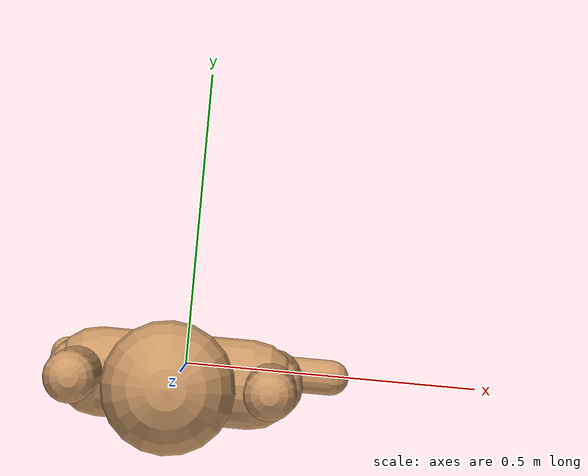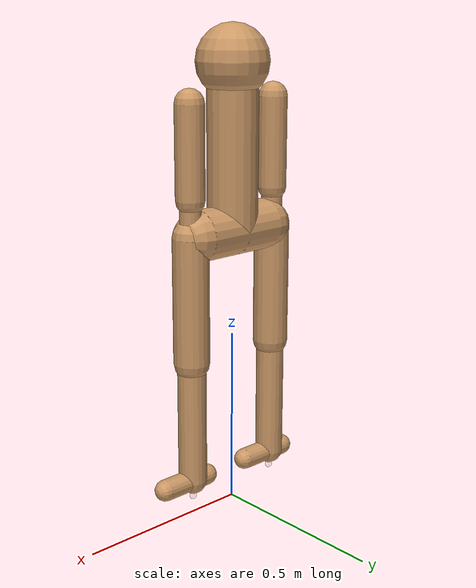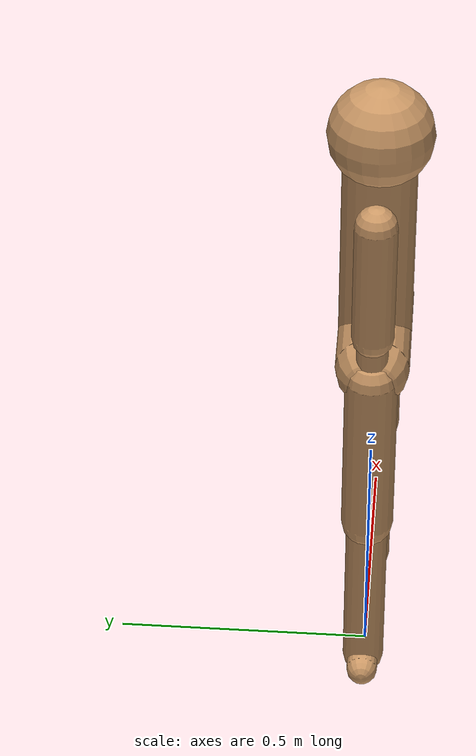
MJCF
<mujoco model="humanoid_standup_minimalist">
  <compiler angle="degree" coordinate="local" inertiafromgeom="true"/>

  <option integrator="implicitfast" timestep="0.01" gravity="0 0 -9.81"/>

  <default>
    <joint armature="0.01" damping="2" limited="false"/>
    <geom conaffinity="0" contype="0" material="geom" rgba="0.8 0.6 .4 1"/>
    <motor ctrllimited="true" ctrlrange="-1.0 1.0" gear="100"/>
  </default>

  <asset>
    <texture type="skybox" builtin="gradient" rgb1="1 1 1" rgb2="1 1 1" width="100" height="100"/>
    <texture builtin="flat" name="texgeom" rgb1="0.8 0.6 0.4" rgb2="0.8 0.6 0.4" type="cube" width="127" height="1278"/>
    <material name="geom" texture="texgeom"/>
  </asset>

  <worldbody>
    <light cutoff="100" diffuse="1 1 1" dir="0 0 -1" directional="true" pos="0 0 4" specular=".1 .1 .1"/>

    <body name="left_anchor" pos="-0.15 0 0.05">
        <geom name="l_anchor_geom" type="sphere" size="0.01" rgba="0.5 0.5 0.5 0.2"/>
    </body>
    <body name="right_anchor" pos="0.15 0 0.05">
        <geom name="r_anchor_geom" type="sphere" size="0.01" rgba="0.5 0.5 0.5 0.2"/>
    </body>

    <body name="pelvis" pos="0 0 0.8">
      <camera name="side" pos="0 -3 1" euler="90 0 0" mode="trackcom"/>
      <joint name="root_x" type="slide" axis="1 0 0" armature="0" damping="0"/>
      <joint name="root_z" type="slide" axis="0 0 1" armature="0" damping="0"/>
      <geom name="pelvis_geom" type="capsule" fromto="-0.12 0 0 0.12 0 0" size="0.07"/>

      <body name="torso" pos="0 0 0">
        <joint name="waist" type="hinge" axis="0 1 0"/>
        <geom name="torso_geom" type="capsule" fromto="0 0 0 0 0 0.4" size="0.07"/>

        <body name="head" pos="0 0 0.45">
          <geom name="head_geom" type="sphere" size="0.1"/>
        </body>

        <body name="left_arm" pos="-0.15 0 0.35">
          <joint name="l_shoulder" type="hinge" axis="0 1 0"/>
          <geom name="l_arm_geom" type="capsule" fromto="0 0 0 0 0 -0.25" size="0.04"/>
          <body name="left_forearm" pos="0 0 -0.25">
            <joint name="l_elbow" type="hinge" axis="0 1 0"/>
            <geom name="l_forearm_geom" type="capsule" fromto="0 0 0 0 0 -0.2" size="0.03"/>
          </body>
        </body>

        <body name="right_arm" pos="0.15 0 0.35">
          <joint name="r_shoulder" type="hinge" axis="0 1 0"/>
          <geom name="r_arm_geom" type="capsule" fromto="0 0 0 0 0 -0.25" size="0.04"/>
          <body name="right_forearm" pos="0 0 -0.25">
            <joint name="r_elbow" type="hinge" axis="0 1 0"/>
            <geom name="r_forearm_geom" type="capsule" fromto="0 0 0 0 0 -0.2" size="0.03"/>
          </body>
        </body>
      </body>

      <body name="left_thigh" pos="-0.15 0 0">
        <joint name="l_hip" type="hinge" axis="0 1 0"/>
        <geom name="l_thigh_geom" type="capsule" fromto="0 0 0 0 0 -0.35" size="0.05"/>
        <body name="left_shin" pos="0 0 -0.35">
          <joint name="l_knee" type="hinge" axis="0 1 0"/>
          <geom name="l_shin_geom" type="capsule" fromto="0 0 0 0 0 -0.35" size="0.04"/>
          <body name="left_foot" pos="0 0 -0.35">
            <joint name="l_ankle" type="hinge" axis="0 1 0"/>
            <geom name="l_foot_geom" type="capsule" fromto="-0.05 0 0 0.1 0 0" size="0.03"/>
          </body>
        </body>
      </body>

      <body name="right_thigh" pos="0.15 0 0">
        <joint name="r_hip" type="hinge" axis="0 1 0"/>
        <geom name="r_thigh_geom" type="capsule" fromto="0 0 0 0 0 -0.35" size="0.05"/>
        <body name="right_shin" pos="0 0 -0.35">
          <joint name="r_knee" type="hinge" axis="0 1 0"/>
          <geom name="r_shin_geom" type="capsule" fromto="0 0 0 0 0 -0.35" size="0.04"/>
          <body name="right_foot" pos="0 0 -0.35">
            <joint name="r_ankle" type="hinge" axis="0 1 0"/>
            <geom name="r_foot_geom" type="capsule" fromto="-0.05 0 0 0.1 0 0" size="0.03"/>
          </body>
        </body>
      </body>
    </body>
  </worldbody>

  <equality>
    <weld body1="left_foot" body2="left_anchor" solref="0.01 1" solimp=".9 .9 0.01"/>
    <weld body1="right_foot" body2="right_anchor" solref="0.01 1" solimp=".9 .9 0.01"/>
  </equality>

  <actuator>
    <motor name="m_waist" joint="waist"/>
    <motor name="m_l_shoulder" joint="l_shoulder"/>
    <motor name="m_r_shoulder" joint="r_shoulder"/>
    <motor name="m_l_hip" joint="l_hip"/>
    <motor name="m_l_knee" joint="l_knee"/>
    <motor name="m_l_ankle" joint="l_ankle"/>
    <motor name="m_r_hip" joint="r_hip"/>
    <motor name="m_r_knee" joint="r_knee"/>
    <motor name="m_r_ankle" joint="r_ankle"/>
  </actuator>
</mujoco>
